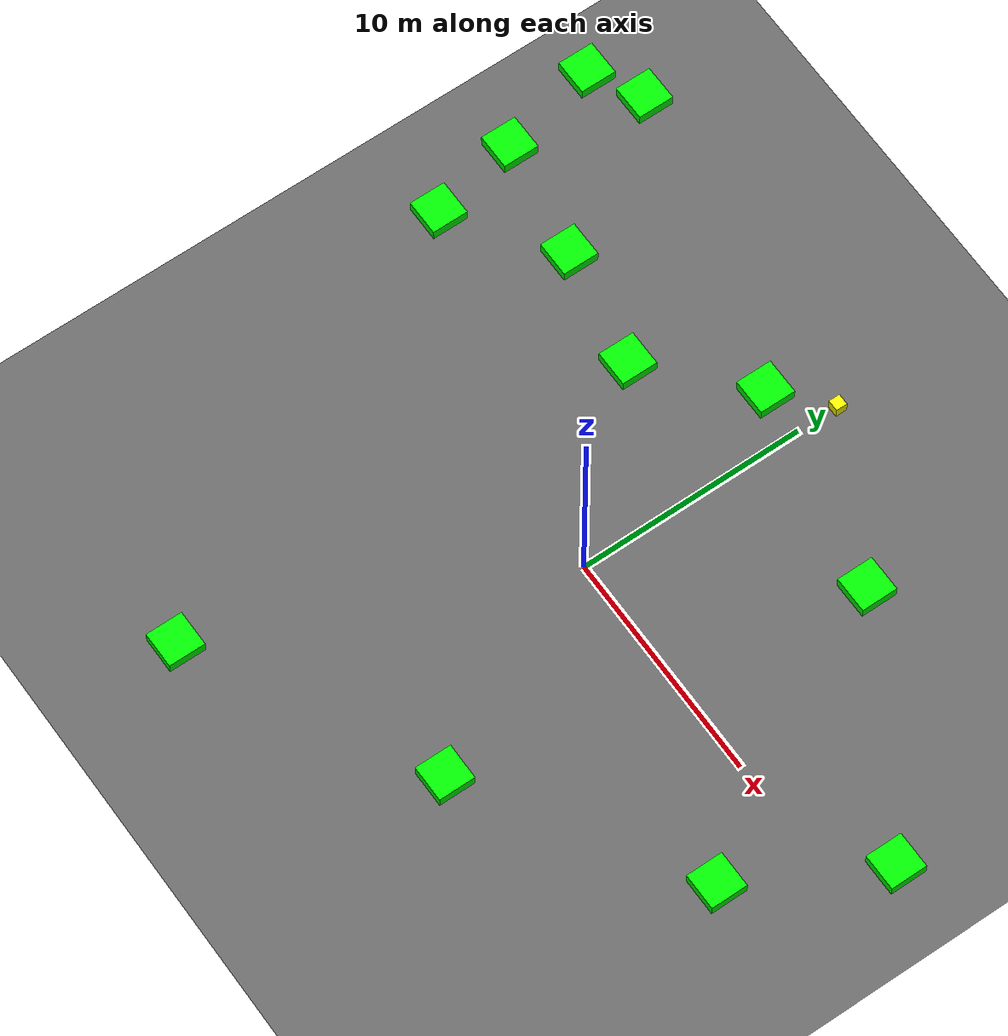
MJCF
<mujoco model="baseline_lvl5_obs12_seed4006">
    <compiler angle="degree" coordinate="local" inertiafromgeom="true"/>
    <option integrator="RK4" timestep="0.01"/>

    <asset>
        <texture builtin="gradient" height="100" rgb1="0.6 0.8 1" rgb2="0 0 0" type="skybox" width="100"/>
        <texture name="floor_texture" type="2d" builtin="checker" width="100" height="100" rgb1="0 0 0" rgb2="0.8 0.8 0.8"/>
        <material name="MatPlane" reflectance="0.5" shininess="1" specular="1" texrepeat="10 10" texture="floor_texture"/>
    </asset>

    <!-- Excluding the contact between the agent and the goal, and the agent and the floor -->
    <contact>
        <exclude body1="agent" body2="goal"/>
        <exclude body1 = "agent" body2 = "floor"/>
    </contact>

    <extension>
        <plugin plugin = "mujoco.pid">
            <instance name = "pid1">
                <config key="kp" value="2"/>
                <config key="ki" value="0"/>
                <config key="kd" value="55"/>
            </instance>
        </plugin>
    </extension>

    <worldbody>
        <light cutoff="100" diffuse="1 1 1" dir="-0 0 -1.3" directional="true" exponent="1" pos="0 0 1.3" specular=".1 .1 .1"/>
        <body name="floor" pos="0 0 0">
            <geom name="floor_geom" type="plane" size="20 20 0.1" material="MatPlane"/>
        </body>

        <!-- Goal -->
        <body name="goal" pos="12.000 -12.000 0">
            <geom name="goal_geom" type="plane" size="0.5 0.5 1" pos="0 0 0" rgba="1 0 0 1"/>
        </body>

        <!-- Agent -->
        <body name="agent" pos="0.061 11.797 0.25">
            <joint name="j1" type="slide" axis ="1 0 0 "/>
            <joint name="j2" type="slide" axis ="0 1 0 "/>
            <geom name="agent_geom" type="box" size="0.25 0.25 0.250" rgba="1 1 0 1"/>
        </body>

    <body name="obstacle1" pos="-6.161 -14.378 0.250">
      <geom name="obstacle1_geom" type="box"
            size="0.800 0.800 0.250"
            rgba="0 1 0 1"/>
    </body>
    <body name="obstacle2" pos="-15.700 4.176 0.250">
      <geom name="obstacle2_geom" type="box"
            size="0.800 0.800 0.250"
            rgba="0 1 0 1"/>
    </body>
    <body name="obstacle3" pos="13.355 -3.535 0.250">
      <geom name="obstacle3_geom" type="box"
            size="0.800 0.800 0.250"
            rgba="0 1 0 1"/>
    </body>
    <body name="obstacle4" pos="-6.100 6.347 0.250">
      <geom name="obstacle4_geom" type="box"
            size="0.800 0.800 0.250"
            rgba="0 1 0 1"/>
    </body>
    <body name="obstacle5" pos="-2.073 9.941 0.250">
      <geom name="obstacle5_geom" type="box"
            size="0.800 0.800 0.250"
            rgba="0 1 0 1"/>
    </body>
    <body name="obstacle6" pos="16.516 2.303 0.250">
      <geom name="obstacle6_geom" type="box"
            size="0.800 0.800 0.250"
            rgba="0 1 0 1"/>
    </body>
    <body name="obstacle7" pos="4.095 -9.229 0.250">
      <geom name="obstacle7_geom" type="box"
            size="0.800 0.800 0.250"
            rgba="0 1 0 1"/>
    </body>
    <body name="obstacle8" pos="-15.298 13.711 0.250">
      <geom name="obstacle8_geom" type="box"
            size="0.800 0.800 0.250"
            rgba="0 1 0 1"/>
    </body>
    <body name="obstacle9" pos="-11.291 7.264 0.250">
      <geom name="obstacle9_geom" type="box"
            size="0.800 0.800 0.250"
            rgba="0 1 0 1"/>
    </body>
    <body name="obstacle10" pos="-16.526 8.119 0.250">
      <geom name="obstacle10_geom" type="box"
            size="0.800 0.800 0.250"
            rgba="0 1 0 1"/>
    </body>
    <body name="obstacle11" pos="6.863 8.139 0.250">
      <geom name="obstacle11_geom" type="box"
            size="0.800 0.800 0.250"
            rgba="0 1 0 1"/>
    </body>
    <body name="obstacle12" pos="-17.538 12.532 0.250">
      <geom name="obstacle12_geom" type="box"
            size="0.800 0.800 0.250"
            rgba="0 1 0 1"/>
    </body>
    </worldbody>

    <actuator>
        <plugin joint="j1" plugin="mujoco.pid" instance="pid1" />
        <plugin joint="j2" plugin="mujoco.pid" instance="pid1"/>
    </actuator>

  <sensor>
    <distance name="dist1" geom1="agent_geom" geom2="obstacle1_geom" cutoff="1.5"/>
    <distance name="dist2" geom1="agent_geom" geom2="obstacle2_geom" cutoff="1.5"/>
    <distance name="dist3" geom1="agent_geom" geom2="obstacle3_geom" cutoff="1.5"/>
    <distance name="dist4" geom1="agent_geom" geom2="obstacle4_geom" cutoff="1.5"/>
    <distance name="dist5" geom1="agent_geom" geom2="obstacle5_geom" cutoff="1.5"/>
    <distance name="dist6" geom1="agent_geom" geom2="obstacle6_geom" cutoff="1.5"/>
    <distance name="dist7" geom1="agent_geom" geom2="obstacle7_geom" cutoff="1.5"/>
    <distance name="dist8" geom1="agent_geom" geom2="obstacle8_geom" cutoff="1.5"/>
    <distance name="dist9" geom1="agent_geom" geom2="obstacle9_geom" cutoff="1.5"/>
    <distance name="dist10" geom1="agent_geom" geom2="obstacle10_geom" cutoff="1.5"/>
    <distance name="dist11" geom1="agent_geom" geom2="obstacle11_geom" cutoff="1.5"/>
    <distance name="dist12" geom1="agent_geom" geom2="obstacle12_geom" cutoff="1.5"/>
  </sensor>
</mujoco>
